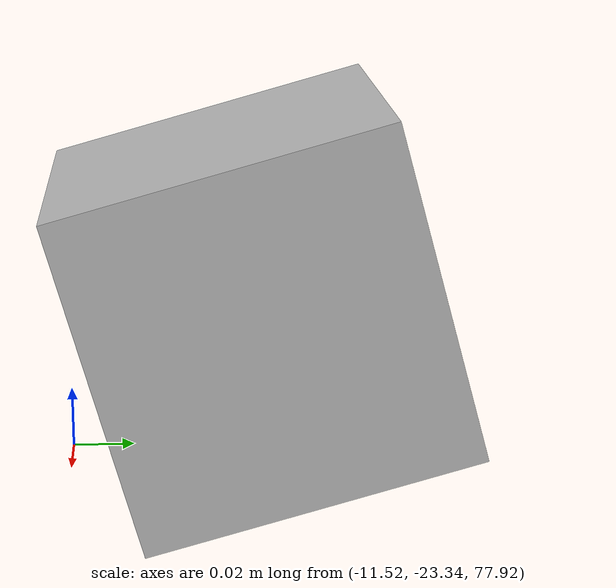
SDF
<sdf version="1.6">
 <world name="default">
  <model name="camera_recorder">
   <static>1</static>
   <pose>-11.4727 -23.2814 77.9846 0 1.2978 1.56422</pose>
   <link name="cam_link">
    <visual name="visual"><geometry><box><size>0.1 0.1 0.1</size></box></geometry></visual>
    <sensor name="my_camera" type="camera">
     <camera name="__default__">
      <save enabled="1"><path>/home/kostas/experiments/simulation/circular_turn</path></save>
      <horizontal_fov>1.047</horizontal_fov>
      <image><width>1920</width><height>1080</height></image>
      <clip><near>0.1</near><far>100</far></clip>
     </camera>
     <always_on>1</always_on>
     <update_rate>30</update_rate>
    </sensor>
   </link>
  </model>
  <model name="cloverleaf_interchange">
   <static>1</static>
   <link name="link">
    <collision name="collision">
     <geometry>
      <mesh>
       <uri>model://cloverleaf_interchange/meshes/cloverleaf.obj</uri>
       <scale>0.0254 0.0254 0.0254</scale>
      </mesh>
     </geometry>
    </collision>
    <visual name="visual">
     <geometry>
      <mesh>
       <uri>model://cloverleaf_interchange/meshes/cloverleaf.obj</uri>
       <scale>0.0254 0.0254 0.0254</scale>
      </mesh>
     </geometry>
    </visual>
   </link>
   <pose>121.481 -0.881388 0 0 -0 0</pose>
  </model>
 </world>
</sdf>
